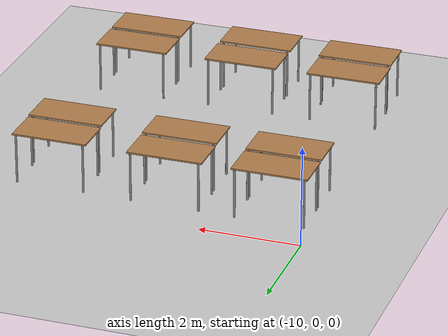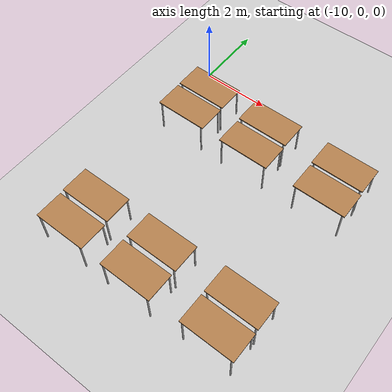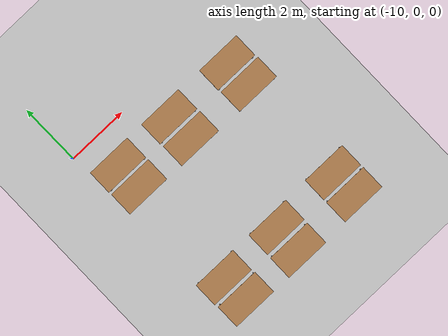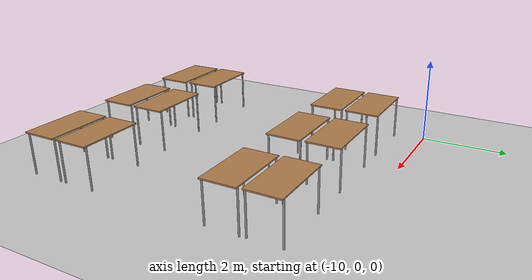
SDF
<sdf version="1.7">
 <world name="default">
  <model name="ground_plane">
   <static>1</static>
   <link name="link">
    <collision name="collision">
     <geometry><plane><normal>0 0 1</normal><size>100 100</size></plane></geometry>
     <surface><friction><ode><mu>100</mu><mu2>50</mu2></ode></friction></surface>
    </collision>
    <visual name="visual">
     <cast_shadows>0</cast_shadows>
     <geometry><plane><normal>0 0 1</normal><size>100 100</size></plane></geometry>
     <material>
      <script><uri>file://media/materials/scripts/gazebo.material</uri><name>Gazebo/Grey</name></script>
     </material>
    </visual>
   </link>
  </model>
  <model name="table_11">
   <static>1</static>
   <link name="link">
    <collision name="surface">
     <pose>0 0 1 0 -0 0</pose>
     <geometry><box><size>1.5 0.8 0.03</size></box></geometry>
     <surface><friction><ode><mu>0.6</mu><mu2>0.6</mu2></ode></friction></surface>
    </collision>
    <visual name="visual1">
     <pose>0 0 1 0 -0 0</pose>
     <geometry><box><size>1.5 0.8 0.03</size></box></geometry>
     <material>
      <script><uri>file://media/materials/scripts/gazebo.material</uri><name>Gazebo/Wood</name></script>
     </material>
    </visual>
    <collision name="front_left_leg">
     <pose>0.68 0.38 0.5 0 -0 0</pose>
     <geometry><cylinder><radius>0.02</radius><length>1</length></cylinder></geometry>
    </collision>
    <visual name="front_left_leg">
     <pose>0.68 0.38 0.5 0 -0 0</pose>
     <geometry><cylinder><radius>0.02</radius><length>1</length></cylinder></geometry>
     <material>
      <script><uri>file://media/materials/scripts/gazebo.material</uri><name>Gazebo/Grey</name></script>
     </material>
    </visual>
    <collision name="front_right_leg">
     <pose>0.68 -0.38 0.5 0 -0 0</pose>
     <geometry><cylinder><radius>0.02</radius><length>1</length></cylinder></geometry>
    </collision>
    <visual name="front_right_leg">
     <pose>0.68 -0.38 0.5 0 -0 0</pose>
     <geometry><cylinder><radius>0.02</radius><length>1</length></cylinder></geometry>
     <material>
      <script><uri>file://media/materials/scripts/gazebo.material</uri><name>Gazebo/Grey</name></script>
     </material>
    </visual>
    <collision name="back_right_leg">
     <pose>-0.68 -0.38 0.5 0 -0 0</pose>
     <geometry><cylinder><radius>0.02</radius><length>1</length></cylinder></geometry>
    </collision>
    <visual name="back_right_leg">
     <pose>-0.68 -0.38 0.5 0 -0 0</pose>
     <geometry><cylinder><radius>0.02</radius><length>1</length></cylinder></geometry>
     <material>
      <script><uri>file://media/materials/scripts/gazebo.material</uri><name>Gazebo/Grey</name></script>
     </material>
    </visual>
    <collision name="back_left_leg">
     <pose>-0.68 0.38 0.5 0 -0 0</pose>
     <geometry><cylinder><radius>0.02</radius><length>1</length></cylinder></geometry>
    </collision>
    <visual name="back_left_leg">
     <pose>-0.68 0.38 0.5 0 -0 0</pose>
     <geometry><cylinder><radius>0.02</radius><length>1</length></cylinder></geometry>
     <material>
      <script><uri>file://media/materials/scripts/gazebo.material</uri><name>Gazebo/Grey</name></script>
     </material>
    </visual>
   </link>
   <pose>-4.70823 -6.50305 0 0 -0 0</pose>
  </model>
  <model name="table_12">
   <static>1</static>
   <link name="link">
    <collision name="surface">
     <pose>0 0 1 0 -0 0</pose>
     <geometry><box><size>1.5 0.8 0.03</size></box></geometry>
     <surface><friction><ode><mu>0.6</mu><mu2>0.6</mu2></ode></friction></surface>
    </collision>
    <visual name="visual1">
     <pose>0 0 1 0 -0 0</pose>
     <geometry><box><size>1.5 0.8 0.03</size></box></geometry>
     <material>
      <script><uri>file://media/materials/scripts/gazebo.material</uri><name>Gazebo/Wood</name></script>
     </material>
    </visual>
    <collision name="front_left_leg">
     <pose>0.68 0.38 0.5 0 -0 0</pose>
     <geometry><cylinder><radius>0.02</radius><length>1</length></cylinder></geometry>
    </collision>
    <visual name="front_left_leg">
     <pose>0.68 0.38 0.5 0 -0 0</pose>
     <geometry><cylinder><radius>0.02</radius><length>1</length></cylinder></geometry>
     <material>
      <script><uri>file://media/materials/scripts/gazebo.material</uri><name>Gazebo/Grey</name></script>
     </material>
    </visual>
    <collision name="front_right_leg">
     <pose>0.68 -0.38 0.5 0 -0 0</pose>
     <geometry><cylinder><radius>0.02</radius><length>1</length></cylinder></geometry>
    </collision>
    <visual name="front_right_leg">
     <pose>0.68 -0.38 0.5 0 -0 0</pose>
     <geometry><cylinder><radius>0.02</radius><length>1</length></cylinder></geometry>
     <material>
      <script><uri>file://media/materials/scripts/gazebo.material</uri><name>Gazebo/Grey</name></script>
     </material>
    </visual>
    <collision name="back_right_leg">
     <pose>-0.68 -0.38 0.5 0 -0 0</pose>
     <geometry><cylinder><radius>0.02</radius><length>1</length></cylinder></geometry>
    </collision>
    <visual name="back_right_leg">
     <pose>-0.68 -0.38 0.5 0 -0 0</pose>
     <geometry><cylinder><radius>0.02</radius><length>1</length></cylinder></geometry>
     <material>
      <script><uri>file://media/materials/scripts/gazebo.material</uri><name>Gazebo/Grey</name></script>
     </material>
    </visual>
    <collision name="back_left_leg">
     <pose>-0.68 0.38 0.5 0 -0 0</pose>
     <geometry><cylinder><radius>0.02</radius><length>1</length></cylinder></geometry>
    </collision>
    <visual name="back_left_leg">
     <pose>-0.68 0.38 0.5 0 -0 0</pose>
     <geometry><cylinder><radius>0.02</radius><length>1</length></cylinder></geometry>
     <material>
      <script><uri>file://media/materials/scripts/gazebo.material</uri><name>Gazebo/Grey</name></script>
     </material>
    </visual>
   </link>
   <pose>-4.71458 -5.60313 0 0 -0 0</pose>
  </model>
  <model name="table_13">
   <static>1</static>
   <link name="link">
    <collision name="surface">
     <pose>0 0 1 0 -0 0</pose>
     <geometry><box><size>1.5 0.8 0.03</size></box></geometry>
     <surface><friction><ode><mu>0.6</mu><mu2>0.6</mu2></ode></friction></surface>
    </collision>
    <visual name="visual1">
     <pose>0 0 1 0 -0 0</pose>
     <geometry><box><size>1.5 0.8 0.03</size></box></geometry>
     <material>
      <script><uri>file://media/materials/scripts/gazebo.material</uri><name>Gazebo/Wood</name></script>
     </material>
    </visual>
    <collision name="front_left_leg">
     <pose>0.68 0.38 0.5 0 -0 0</pose>
     <geometry><cylinder><radius>0.02</radius><length>1</length></cylinder></geometry>
    </collision>
    <visual name="front_left_leg">
     <pose>0.68 0.38 0.5 0 -0 0</pose>
     <geometry><cylinder><radius>0.02</radius><length>1</length></cylinder></geometry>
     <material>
      <script><uri>file://media/materials/scripts/gazebo.material</uri><name>Gazebo/Grey</name></script>
     </material>
    </visual>
    <collision name="front_right_leg">
     <pose>0.68 -0.38 0.5 0 -0 0</pose>
     <geometry><cylinder><radius>0.02</radius><length>1</length></cylinder></geometry>
    </collision>
    <visual name="front_right_leg">
     <pose>0.68 -0.38 0.5 0 -0 0</pose>
     <geometry><cylinder><radius>0.02</radius><length>1</length></cylinder></geometry>
     <material>
      <script><uri>file://media/materials/scripts/gazebo.material</uri><name>Gazebo/Grey</name></script>
     </material>
    </visual>
    <collision name="back_right_leg">
     <pose>-0.68 -0.38 0.5 0 -0 0</pose>
     <geometry><cylinder><radius>0.02</radius><length>1</length></cylinder></geometry>
    </collision>
    <visual name="back_right_leg">
     <pose>-0.68 -0.38 0.5 0 -0 0</pose>
     <geometry><cylinder><radius>0.02</radius><length>1</length></cylinder></geometry>
     <material>
      <script><uri>file://media/materials/scripts/gazebo.material</uri><name>Gazebo/Grey</name></script>
     </material>
    </visual>
    <collision name="back_left_leg">
     <pose>-0.68 0.38 0.5 0 -0 0</pose>
     <geometry><cylinder><radius>0.02</radius><length>1</length></cylinder></geometry>
    </collision>
    <visual name="back_left_leg">
     <pose>-0.68 0.38 0.5 0 -0 0</pose>
     <geometry><cylinder><radius>0.02</radius><length>1</length></cylinder></geometry>
     <material>
      <script><uri>file://media/materials/scripts/gazebo.material</uri><name>Gazebo/Grey</name></script>
     </material>
    </visual>
   </link>
   <pose>-7.03261 -6.55167 0 0 -0 0</pose>
  </model>
  <model name="table_14">
   <static>1</static>
   <link name="link">
    <collision name="surface">
     <pose>0 0 1 0 -0 0</pose>
     <geometry><box><size>1.5 0.8 0.03</size></box></geometry>
     <surface><friction><ode><mu>0.6</mu><mu2>0.6</mu2></ode></friction></surface>
    </collision>
    <visual name="visual1">
     <pose>0 0 1 0 -0 0</pose>
     <geometry><box><size>1.5 0.8 0.03</size></box></geometry>
     <material>
      <script><uri>file://media/materials/scripts/gazebo.material</uri><name>Gazebo/Wood</name></script>
     </material>
    </visual>
    <collision name="front_left_leg">
     <pose>0.68 0.38 0.5 0 -0 0</pose>
     <geometry><cylinder><radius>0.02</radius><length>1</length></cylinder></geometry>
    </collision>
    <visual name="front_left_leg">
     <pose>0.68 0.38 0.5 0 -0 0</pose>
     <geometry><cylinder><radius>0.02</radius><length>1</length></cylinder></geometry>
     <material>
      <script><uri>file://media/materials/scripts/gazebo.material</uri><name>Gazebo/Grey</name></script>
     </material>
    </visual>
    <collision name="front_right_leg">
     <pose>0.68 -0.38 0.5 0 -0 0</pose>
     <geometry><cylinder><radius>0.02</radius><length>1</length></cylinder></geometry>
    </collision>
    <visual name="front_right_leg">
     <pose>0.68 -0.38 0.5 0 -0 0</pose>
     <geometry><cylinder><radius>0.02</radius><length>1</length></cylinder></geometry>
     <material>
      <script><uri>file://media/materials/scripts/gazebo.material</uri><name>Gazebo/Grey</name></script>
     </material>
    </visual>
    <collision name="back_right_leg">
     <pose>-0.68 -0.38 0.5 0 -0 0</pose>
     <geometry><cylinder><radius>0.02</radius><length>1</length></cylinder></geometry>
    </collision>
    <visual name="back_right_leg">
     <pose>-0.68 -0.38 0.5 0 -0 0</pose>
     <geometry><cylinder><radius>0.02</radius><length>1</length></cylinder></geometry>
     <material>
      <script><uri>file://media/materials/scripts/gazebo.material</uri><name>Gazebo/Grey</name></script>
     </material>
    </visual>
    <collision name="back_left_leg">
     <pose>-0.68 0.38 0.5 0 -0 0</pose>
     <geometry><cylinder><radius>0.02</radius><length>1</length></cylinder></geometry>
    </collision>
    <visual name="back_left_leg">
     <pose>-0.68 0.38 0.5 0 -0 0</pose>
     <geometry><cylinder><radius>0.02</radius><length>1</length></cylinder></geometry>
     <material>
      <script><uri>file://media/materials/scripts/gazebo.material</uri><name>Gazebo/Grey</name></script>
     </material>
    </visual>
   </link>
   <pose>-7.02692 -5.62758 0 0 -0 0</pose>
  </model>
  <model name="table_15">
   <static>1</static>
   <link name="link">
    <collision name="surface">
     <pose>0 0 1 0 -0 0</pose>
     <geometry><box><size>1.5 0.8 0.03</size></box></geometry>
     <surface><friction><ode><mu>0.6</mu><mu2>0.6</mu2></ode></friction></surface>
    </collision>
    <visual name="visual1">
     <pose>0 0 1 0 -0 0</pose>
     <geometry><box><size>1.5 0.8 0.03</size></box></geometry>
     <material>
      <script><uri>file://media/materials/scripts/gazebo.material</uri><name>Gazebo/Wood</name></script>
     </material>
    </visual>
    <collision name="front_left_leg">
     <pose>0.68 0.38 0.5 0 -0 0</pose>
     <geometry><cylinder><radius>0.02</radius><length>1</length></cylinder></geometry>
    </collision>
    <visual name="front_left_leg">
     <pose>0.68 0.38 0.5 0 -0 0</pose>
     <geometry><cylinder><radius>0.02</radius><length>1</length></cylinder></geometry>
     <material>
      <script><uri>file://media/materials/scripts/gazebo.material</uri><name>Gazebo/Grey</name></script>
     </material>
    </visual>
    <collision name="front_right_leg">
     <pose>0.68 -0.38 0.5 0 -0 0</pose>
     <geometry><cylinder><radius>0.02</radius><length>1</length></cylinder></geometry>
    </collision>
    <visual name="front_right_leg">
     <pose>0.68 -0.38 0.5 0 -0 0</pose>
     <geometry><cylinder><radius>0.02</radius><length>1</length></cylinder></geometry>
     <material>
      <script><uri>file://media/materials/scripts/gazebo.material</uri><name>Gazebo/Grey</name></script>
     </material>
    </visual>
    <collision name="back_right_leg">
     <pose>-0.68 -0.38 0.5 0 -0 0</pose>
     <geometry><cylinder><radius>0.02</radius><length>1</length></cylinder></geometry>
    </collision>
    <visual name="back_right_leg">
     <pose>-0.68 -0.38 0.5 0 -0 0</pose>
     <geometry><cylinder><radius>0.02</radius><length>1</length></cylinder></geometry>
     <material>
      <script><uri>file://media/materials/scripts/gazebo.material</uri><name>Gazebo/Grey</name></script>
     </material>
    </visual>
    <collision name="back_left_leg">
     <pose>-0.68 0.38 0.5 0 -0 0</pose>
     <geometry><cylinder><radius>0.02</radius><length>1</length></cylinder></geometry>
    </collision>
    <visual name="back_left_leg">
     <pose>-0.68 0.38 0.5 0 -0 0</pose>
     <geometry><cylinder><radius>0.02</radius><length>1</length></cylinder></geometry>
     <material>
      <script><uri>file://media/materials/scripts/gazebo.material</uri><name>Gazebo/Grey</name></script>
     </material>
    </visual>
   </link>
   <pose>-9.14142 -6.53521 0 0 -0 0</pose>
  </model>
  <model name="table_16">
   <static>1</static>
   <link name="link">
    <collision name="surface">
     <pose>0 0 1 0 -0 0</pose>
     <geometry><box><size>1.5 0.8 0.03</size></box></geometry>
     <surface><friction><ode><mu>0.6</mu><mu2>0.6</mu2></ode></friction></surface>
    </collision>
    <visual name="visual1">
     <pose>0 0 1 0 -0 0</pose>
     <geometry><box><size>1.5 0.8 0.03</size></box></geometry>
     <material>
      <script><uri>file://media/materials/scripts/gazebo.material</uri><name>Gazebo/Wood</name></script>
     </material>
    </visual>
    <collision name="front_left_leg">
     <pose>0.68 0.38 0.5 0 -0 0</pose>
     <geometry><cylinder><radius>0.02</radius><length>1</length></cylinder></geometry>
    </collision>
    <visual name="front_left_leg">
     <pose>0.68 0.38 0.5 0 -0 0</pose>
     <geometry><cylinder><radius>0.02</radius><length>1</length></cylinder></geometry>
     <material>
      <script><uri>file://media/materials/scripts/gazebo.material</uri><name>Gazebo/Grey</name></script>
     </material>
    </visual>
    <collision name="front_right_leg">
     <pose>0.68 -0.38 0.5 0 -0 0</pose>
     <geometry><cylinder><radius>0.02</radius><length>1</length></cylinder></geometry>
    </collision>
    <visual name="front_right_leg">
     <pose>0.68 -0.38 0.5 0 -0 0</pose>
     <geometry><cylinder><radius>0.02</radius><length>1</length></cylinder></geometry>
     <material>
      <script><uri>file://media/materials/scripts/gazebo.material</uri><name>Gazebo/Grey</name></script>
     </material>
    </visual>
    <collision name="back_right_leg">
     <pose>-0.68 -0.38 0.5 0 -0 0</pose>
     <geometry><cylinder><radius>0.02</radius><length>1</length></cylinder></geometry>
    </collision>
    <visual name="back_right_leg">
     <pose>-0.68 -0.38 0.5 0 -0 0</pose>
     <geometry><cylinder><radius>0.02</radius><length>1</length></cylinder></geometry>
     <material>
      <script><uri>file://media/materials/scripts/gazebo.material</uri><name>Gazebo/Grey</name></script>
     </material>
    </visual>
    <collision name="back_left_leg">
     <pose>-0.68 0.38 0.5 0 -0 0</pose>
     <geometry><cylinder><radius>0.02</radius><length>1</length></cylinder></geometry>
    </collision>
    <visual name="back_left_leg">
     <pose>-0.68 0.38 0.5 0 -0 0</pose>
     <geometry><cylinder><radius>0.02</radius><length>1</length></cylinder></geometry>
     <material>
      <script><uri>file://media/materials/scripts/gazebo.material</uri><name>Gazebo/Grey</name></script>
     </material>
    </visual>
   </link>
   <pose>-9.17024 -5.62647 0 0 -0 0</pose>
  </model>
  <model name="table_17">
   <static>1</static>
   <link name="link">
    <collision name="surface">
     <pose>0 0 1 0 -0 0</pose>
     <geometry><box><size>1.5 0.8 0.03</size></box></geometry>
     <surface><friction><ode><mu>0.6</mu><mu2>0.6</mu2></ode></friction></surface>
    </collision>
    <visual name="visual1">
     <pose>0 0 1 0 -0 0</pose>
     <geometry><box><size>1.5 0.8 0.03</size></box></geometry>
     <material>
      <script><uri>file://media/materials/scripts/gazebo.material</uri><name>Gazebo/Wood</name></script>
     </material>
    </visual>
    <collision name="front_left_leg">
     <pose>0.68 0.38 0.5 0 -0 0</pose>
     <geometry><cylinder><radius>0.02</radius><length>1</length></cylinder></geometry>
    </collision>
    <visual name="front_left_leg">
     <pose>0.68 0.38 0.5 0 -0 0</pose>
     <geometry><cylinder><radius>0.02</radius><length>1</length></cylinder></geometry>
     <material>
      <script><uri>file://media/materials/scripts/gazebo.material</uri><name>Gazebo/Grey</name></script>
     </material>
    </visual>
    <collision name="front_right_leg">
     <pose>0.68 -0.38 0.5 0 -0 0</pose>
     <geometry><cylinder><radius>0.02</radius><length>1</length></cylinder></geometry>
    </collision>
    <visual name="front_right_leg">
     <pose>0.68 -0.38 0.5 0 -0 0</pose>
     <geometry><cylinder><radius>0.02</radius><length>1</length></cylinder></geometry>
     <material>
      <script><uri>file://media/materials/scripts/gazebo.material</uri><name>Gazebo/Grey</name></script>
     </material>
    </visual>
    <collision name="back_right_leg">
     <pose>-0.68 -0.38 0.5 0 -0 0</pose>
     <geometry><cylinder><radius>0.02</radius><length>1</length></cylinder></geometry>
    </collision>
    <visual name="back_right_leg">
     <pose>-0.68 -0.38 0.5 0 -0 0</pose>
     <geometry><cylinder><radius>0.02</radius><length>1</length></cylinder></geometry>
     <material>
      <script><uri>file://media/materials/scripts/gazebo.material</uri><name>Gazebo/Grey</name></script>
     </material>
    </visual>
    <collision name="back_left_leg">
     <pose>-0.68 0.38 0.5 0 -0 0</pose>
     <geometry><cylinder><radius>0.02</radius><length>1</length></cylinder></geometry>
    </collision>
    <visual name="back_left_leg">
     <pose>-0.68 0.38 0.5 0 -0 0</pose>
     <geometry><cylinder><radius>0.02</radius><length>1</length></cylinder></geometry>
     <material>
      <script><uri>file://media/materials/scripts/gazebo.material</uri><name>Gazebo/Grey</name></script>
     </material>
    </visual>
   </link>
   <pose>-4.71533 -2.01191 0 0 -0 0</pose>
  </model>
  <model name="table_18">
   <static>1</static>
   <link name="link">
    <collision name="surface">
     <pose>0 0 1 0 -0 0</pose>
     <geometry><box><size>1.5 0.8 0.03</size></box></geometry>
     <surface><friction><ode><mu>0.6</mu><mu2>0.6</mu2></ode></friction></surface>
    </collision>
    <visual name="visual1">
     <pose>0 0 1 0 -0 0</pose>
     <geometry><box><size>1.5 0.8 0.03</size></box></geometry>
     <material>
      <script><uri>file://media/materials/scripts/gazebo.material</uri><name>Gazebo/Wood</name></script>
     </material>
    </visual>
    <collision name="front_left_leg">
     <pose>0.68 0.38 0.5 0 -0 0</pose>
     <geometry><cylinder><radius>0.02</radius><length>1</length></cylinder></geometry>
    </collision>
    <visual name="front_left_leg">
     <pose>0.68 0.38 0.5 0 -0 0</pose>
     <geometry><cylinder><radius>0.02</radius><length>1</length></cylinder></geometry>
     <material>
      <script><uri>file://media/materials/scripts/gazebo.material</uri><name>Gazebo/Grey</name></script>
     </material>
    </visual>
    <collision name="front_right_leg">
     <pose>0.68 -0.38 0.5 0 -0 0</pose>
     <geometry><cylinder><radius>0.02</radius><length>1</length></cylinder></geometry>
    </collision>
    <visual name="front_right_leg">
     <pose>0.68 -0.38 0.5 0 -0 0</pose>
     <geometry><cylinder><radius>0.02</radius><length>1</length></cylinder></geometry>
     <material>
      <script><uri>file://media/materials/scripts/gazebo.material</uri><name>Gazebo/Grey</name></script>
     </material>
    </visual>
    <collision name="back_right_leg">
     <pose>-0.68 -0.38 0.5 0 -0 0</pose>
     <geometry><cylinder><radius>0.02</radius><length>1</length></cylinder></geometry>
    </collision>
    <visual name="back_right_leg">
     <pose>-0.68 -0.38 0.5 0 -0 0</pose>
     <geometry><cylinder><radius>0.02</radius><length>1</length></cylinder></geometry>
     <material>
      <script><uri>file://media/materials/scripts/gazebo.material</uri><name>Gazebo/Grey</name></script>
     </material>
    </visual>
    <collision name="back_left_leg">
     <pose>-0.68 0.38 0.5 0 -0 0</pose>
     <geometry><cylinder><radius>0.02</radius><length>1</length></cylinder></geometry>
    </collision>
    <visual name="back_left_leg">
     <pose>-0.68 0.38 0.5 0 -0 0</pose>
     <geometry><cylinder><radius>0.02</radius><length>1</length></cylinder></geometry>
     <material>
      <script><uri>file://media/materials/scripts/gazebo.material</uri><name>Gazebo/Grey</name></script>
     </material>
    </visual>
   </link>
   <pose>-4.74133 -1.11654 0 0 -0 0</pose>
  </model>
  <model name="table_19">
   <static>1</static>
   <link name="link">
    <collision name="surface">
     <pose>0 0 1 0 -0 0</pose>
     <geometry><box><size>1.5 0.8 0.03</size></box></geometry>
     <surface><friction><ode><mu>0.6</mu><mu2>0.6</mu2></ode></friction></surface>
    </collision>
    <visual name="visual1">
     <pose>0 0 1 0 -0 0</pose>
     <geometry><box><size>1.5 0.8 0.03</size></box></geometry>
     <material>
      <script><uri>file://media/materials/scripts/gazebo.material</uri><name>Gazebo/Wood</name></script>
     </material>
    </visual>
    <collision name="front_left_leg">
     <pose>0.68 0.38 0.5 0 -0 0</pose>
     <geometry><cylinder><radius>0.02</radius><length>1</length></cylinder></geometry>
    </collision>
    <visual name="front_left_leg">
     <pose>0.68 0.38 0.5 0 -0 0</pose>
     <geometry><cylinder><radius>0.02</radius><length>1</length></cylinder></geometry>
     <material>
      <script><uri>file://media/materials/scripts/gazebo.material</uri><name>Gazebo/Grey</name></script>
     </material>
    </visual>
    <collision name="front_right_leg">
     <pose>0.68 -0.38 0.5 0 -0 0</pose>
     <geometry><cylinder><radius>0.02</radius><length>1</length></cylinder></geometry>
    </collision>
    <visual name="front_right_leg">
     <pose>0.68 -0.38 0.5 0 -0 0</pose>
     <geometry><cylinder><radius>0.02</radius><length>1</length></cylinder></geometry>
     <material>
      <script><uri>file://media/materials/scripts/gazebo.material</uri><name>Gazebo/Grey</name></script>
     </material>
    </visual>
    <collision name="back_right_leg">
     <pose>-0.68 -0.38 0.5 0 -0 0</pose>
     <geometry><cylinder><radius>0.02</radius><length>1</length></cylinder></geometry>
    </collision>
    <visual name="back_right_leg">
     <pose>-0.68 -0.38 0.5 0 -0 0</pose>
     <geometry><cylinder><radius>0.02</radius><length>1</length></cylinder></geometry>
     <material>
      <script><uri>file://media/materials/scripts/gazebo.material</uri><name>Gazebo/Grey</name></script>
     </material>
    </visual>
    <collision name="back_left_leg">
     <pose>-0.68 0.38 0.5 0 -0 0</pose>
     <geometry><cylinder><radius>0.02</radius><length>1</length></cylinder></geometry>
    </collision>
    <visual name="back_left_leg">
     <pose>-0.68 0.38 0.5 0 -0 0</pose>
     <geometry><cylinder><radius>0.02</radius><length>1</length></cylinder></geometry>
     <material>
      <script><uri>file://media/materials/scripts/gazebo.material</uri><name>Gazebo/Grey</name></script>
     </material>
    </visual>
   </link>
   <pose>-7.05038 -1.9932 0 0 -0 0</pose>
  </model>
  <model name="table_20">
   <static>1</static>
   <link name="link">
    <collision name="surface">
     <pose>0 0 1 0 -0 0</pose>
     <geometry><box><size>1.5 0.8 0.03</size></box></geometry>
     <surface><friction><ode><mu>0.6</mu><mu2>0.6</mu2></ode></friction></surface>
    </collision>
    <visual name="visual1">
     <pose>0 0 1 0 -0 0</pose>
     <geometry><box><size>1.5 0.8 0.03</size></box></geometry>
     <material>
      <script><uri>file://media/materials/scripts/gazebo.material</uri><name>Gazebo/Wood</name></script>
     </material>
    </visual>
    <collision name="front_left_leg">
     <pose>0.68 0.38 0.5 0 -0 0</pose>
     <geometry><cylinder><radius>0.02</radius><length>1</length></cylinder></geometry>
    </collision>
    <visual name="front_left_leg">
     <pose>0.68 0.38 0.5 0 -0 0</pose>
     <geometry><cylinder><radius>0.02</radius><length>1</length></cylinder></geometry>
     <material>
      <script><uri>file://media/materials/scripts/gazebo.material</uri><name>Gazebo/Grey</name></script>
     </material>
    </visual>
    <collision name="front_right_leg">
     <pose>0.68 -0.38 0.5 0 -0 0</pose>
     <geometry><cylinder><radius>0.02</radius><length>1</length></cylinder></geometry>
    </collision>
    <visual name="front_right_leg">
     <pose>0.68 -0.38 0.5 0 -0 0</pose>
     <geometry><cylinder><radius>0.02</radius><length>1</length></cylinder></geometry>
     <material>
      <script><uri>file://media/materials/scripts/gazebo.material</uri><name>Gazebo/Grey</name></script>
     </material>
    </visual>
    <collision name="back_right_leg">
     <pose>-0.68 -0.38 0.5 0 -0 0</pose>
     <geometry><cylinder><radius>0.02</radius><length>1</length></cylinder></geometry>
    </collision>
    <visual name="back_right_leg">
     <pose>-0.68 -0.38 0.5 0 -0 0</pose>
     <geometry><cylinder><radius>0.02</radius><length>1</length></cylinder></geometry>
     <material>
      <script><uri>file://media/materials/scripts/gazebo.material</uri><name>Gazebo/Grey</name></script>
     </material>
    </visual>
    <collision name="back_left_leg">
     <pose>-0.68 0.38 0.5 0 -0 0</pose>
     <geometry><cylinder><radius>0.02</radius><length>1</length></cylinder></geometry>
    </collision>
    <visual name="back_left_leg">
     <pose>-0.68 0.38 0.5 0 -0 0</pose>
     <geometry><cylinder><radius>0.02</radius><length>1</length></cylinder></geometry>
     <material>
      <script><uri>file://media/materials/scripts/gazebo.material</uri><name>Gazebo/Grey</name></script>
     </material>
    </visual>
   </link>
   <pose>-7.07012 -1.08865 0 0 -0 0</pose>
  </model>
  <model name="table_21">
   <static>1</static>
   <link name="link">
    <collision name="surface">
     <pose>0 0 1 0 -0 0</pose>
     <geometry><box><size>1.5 0.8 0.03</size></box></geometry>
     <surface><friction><ode><mu>0.6</mu><mu2>0.6</mu2></ode></friction></surface>
    </collision>
    <visual name="visual1">
     <pose>0 0 1 0 -0 0</pose>
     <geometry><box><size>1.5 0.8 0.03</size></box></geometry>
     <material>
      <script><uri>file://media/materials/scripts/gazebo.material</uri><name>Gazebo/Wood</name></script>
     </material>
    </visual>
    <collision name="front_left_leg">
     <pose>0.68 0.38 0.5 0 -0 0</pose>
     <geometry><cylinder><radius>0.02</radius><length>1</length></cylinder></geometry>
    </collision>
    <visual name="front_left_leg">
     <pose>0.68 0.38 0.5 0 -0 0</pose>
     <geometry><cylinder><radius>0.02</radius><length>1</length></cylinder></geometry>
     <material>
      <script><uri>file://media/materials/scripts/gazebo.material</uri><name>Gazebo/Grey</name></script>
     </material>
    </visual>
    <collision name="front_right_leg">
     <pose>0.68 -0.38 0.5 0 -0 0</pose>
     <geometry><cylinder><radius>0.02</radius><length>1</length></cylinder></geometry>
    </collision>
    <visual name="front_right_leg">
     <pose>0.68 -0.38 0.5 0 -0 0</pose>
     <geometry><cylinder><radius>0.02</radius><length>1</length></cylinder></geometry>
     <material>
      <script><uri>file://media/materials/scripts/gazebo.material</uri><name>Gazebo/Grey</name></script>
     </material>
    </visual>
    <collision name="back_right_leg">
     <pose>-0.68 -0.38 0.5 0 -0 0</pose>
     <geometry><cylinder><radius>0.02</radius><length>1</length></cylinder></geometry>
    </collision>
    <visual name="back_right_leg">
     <pose>-0.68 -0.38 0.5 0 -0 0</pose>
     <geometry><cylinder><radius>0.02</radius><length>1</length></cylinder></geometry>
     <material>
      <script><uri>file://media/materials/scripts/gazebo.material</uri><name>Gazebo/Grey</name></script>
     </material>
    </visual>
    <collision name="back_left_leg">
     <pose>-0.68 0.38 0.5 0 -0 0</pose>
     <geometry><cylinder><radius>0.02</radius><length>1</length></cylinder></geometry>
    </collision>
    <visual name="back_left_leg">
     <pose>-0.68 0.38 0.5 0 -0 0</pose>
     <geometry><cylinder><radius>0.02</radius><length>1</length></cylinder></geometry>
     <material>
      <script><uri>file://media/materials/scripts/gazebo.material</uri><name>Gazebo/Grey</name></script>
     </material>
    </visual>
   </link>
   <pose>-9.13343 -1.97055 0 0 -0 0</pose>
  </model>
  <model name="table_22">
   <static>1</static>
   <link name="link">
    <collision name="surface">
     <pose>0 0 1 0 -0 0</pose>
     <geometry><box><size>1.5 0.8 0.03</size></box></geometry>
     <surface><friction><ode><mu>0.6</mu><mu2>0.6</mu2></ode></friction></surface>
    </collision>
    <visual name="visual1">
     <pose>0 0 1 0 -0 0</pose>
     <geometry><box><size>1.5 0.8 0.03</size></box></geometry>
     <material>
      <script><uri>file://media/materials/scripts/gazebo.material</uri><name>Gazebo/Wood</name></script>
     </material>
    </visual>
    <collision name="front_left_leg">
     <pose>0.68 0.38 0.5 0 -0 0</pose>
     <geometry><cylinder><radius>0.02</radius><length>1</length></cylinder></geometry>
    </collision>
    <visual name="front_left_leg">
     <pose>0.68 0.38 0.5 0 -0 0</pose>
     <geometry><cylinder><radius>0.02</radius><length>1</length></cylinder></geometry>
     <material>
      <script><uri>file://media/materials/scripts/gazebo.material</uri><name>Gazebo/Grey</name></script>
     </material>
    </visual>
    <collision name="front_right_leg">
     <pose>0.68 -0.38 0.5 0 -0 0</pose>
     <geometry><cylinder><radius>0.02</radius><length>1</length></cylinder></geometry>
    </collision>
    <visual name="front_right_leg">
     <pose>0.68 -0.38 0.5 0 -0 0</pose>
     <geometry><cylinder><radius>0.02</radius><length>1</length></cylinder></geometry>
     <material>
      <script><uri>file://media/materials/scripts/gazebo.material</uri><name>Gazebo/Grey</name></script>
     </material>
    </visual>
    <collision name="back_right_leg">
     <pose>-0.68 -0.38 0.5 0 -0 0</pose>
     <geometry><cylinder><radius>0.02</radius><length>1</length></cylinder></geometry>
    </collision>
    <visual name="back_right_leg">
     <pose>-0.68 -0.38 0.5 0 -0 0</pose>
     <geometry><cylinder><radius>0.02</radius><length>1</length></cylinder></geometry>
     <material>
      <script><uri>file://media/materials/scripts/gazebo.material</uri><name>Gazebo/Grey</name></script>
     </material>
    </visual>
    <collision name="back_left_leg">
     <pose>-0.68 0.38 0.5 0 -0 0</pose>
     <geometry><cylinder><radius>0.02</radius><length>1</length></cylinder></geometry>
    </collision>
    <visual name="back_left_leg">
     <pose>-0.68 0.38 0.5 0 -0 0</pose>
     <geometry><cylinder><radius>0.02</radius><length>1</length></cylinder></geometry>
     <material>
      <script><uri>file://media/materials/scripts/gazebo.material</uri><name>Gazebo/Grey</name></script>
     </material>
    </visual>
   </link>
   <pose>-9.14424 -1.08185 0 0 -0 0</pose>
  </model>
 </world>
</sdf>
